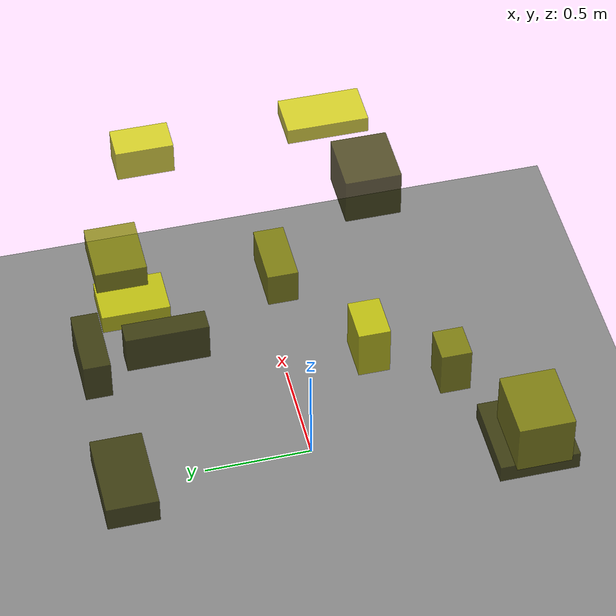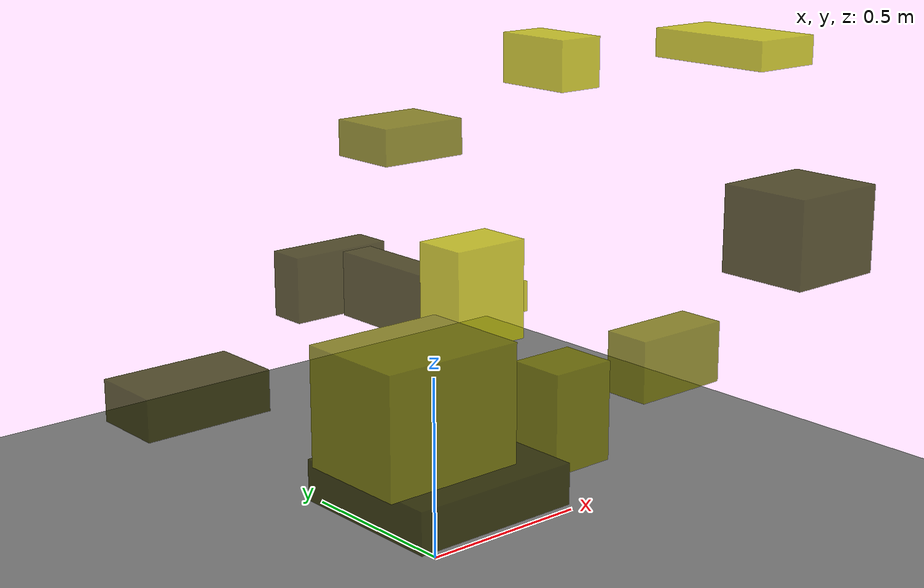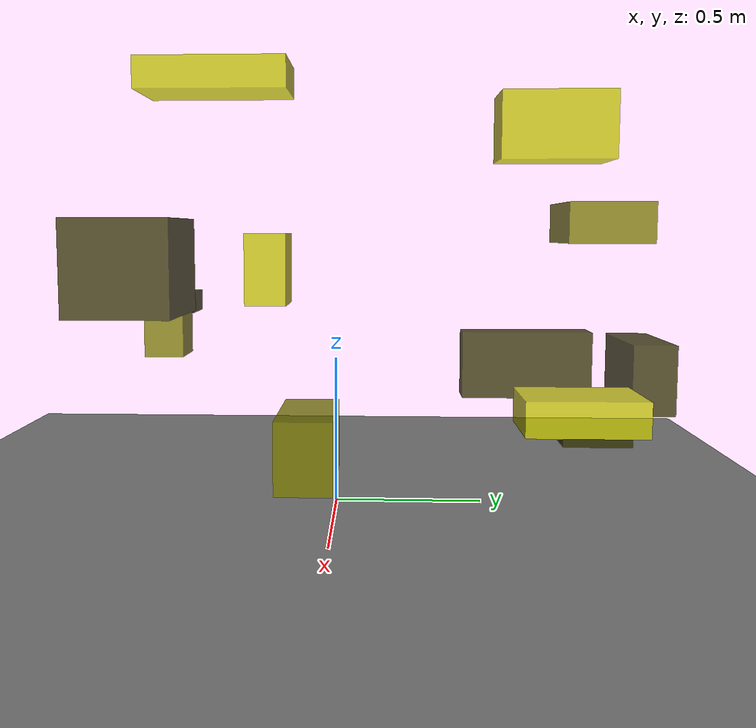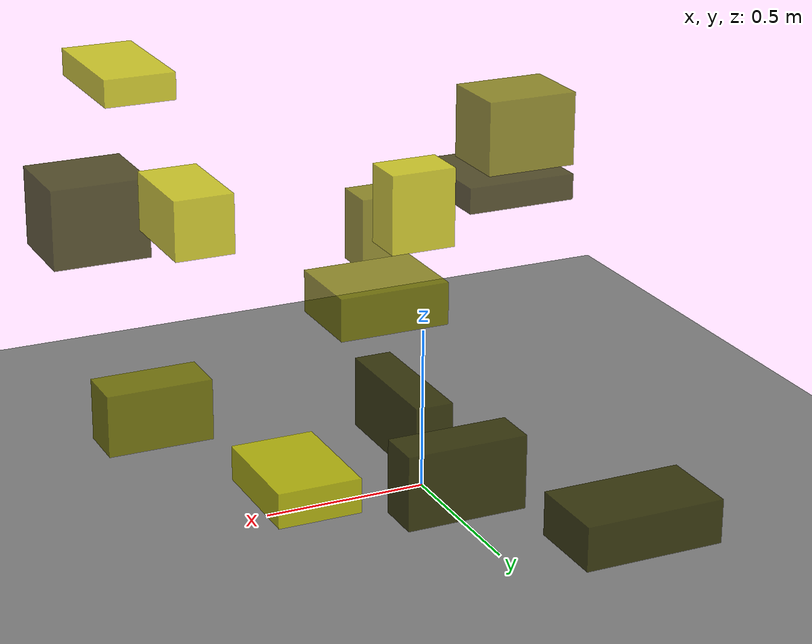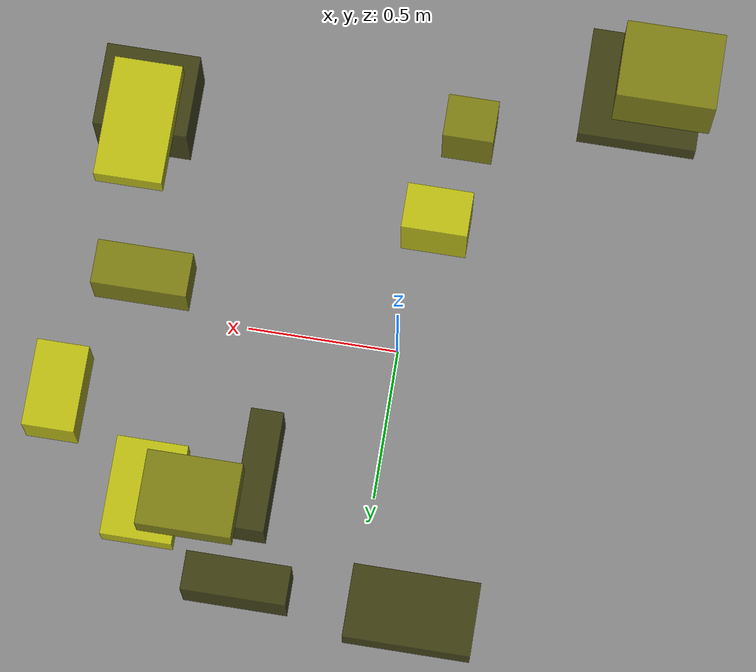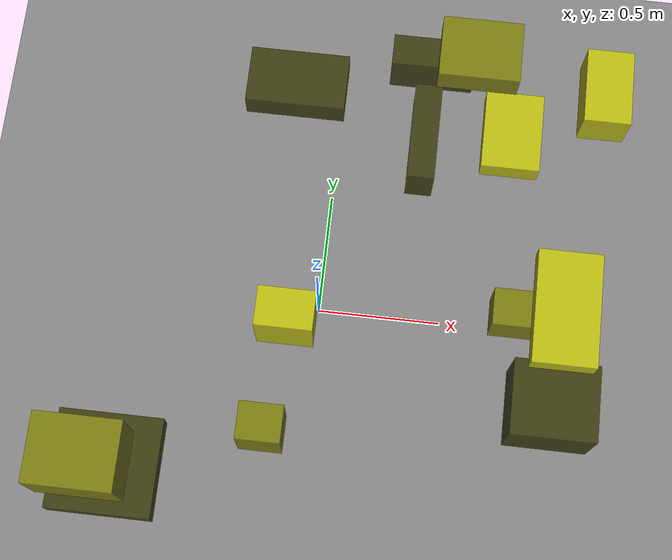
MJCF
<?xml version="1.0"?>
<mujoco model="obstacle_scene">
  <compiler angle="radian" coordinate="local"/>
  <option timestep="0.001" gravity="0 0 -9.81"/>

  <asset>
    <material name="obstacle_mat" rgba="0.8 0.8 0.0 0.8"/>
    <material name="ground_mat" rgba="0.5 0.5 0.5 1"/>
  </asset>

  <worldbody>
    <!-- Ground plane -->
    <geom name="ground" type="plane" size="3 3 0.1" material="ground_mat"/>

    <!-- Obstacles -->
    <body name="obstacle_0" pos="-0.187148 0.897235 0.260922">
      <geom name="obs_0" type="box" size="0.204462 0.118759 0.064092" rgba="0.2 0.2 0.0 0.8"/>
    </body>
    <body name="obstacle_1" pos="-0.134364 -0.611359 0.609477">
      <geom name="obs_1" type="box" size="0.080621 0.068630 0.117488" rgba="0.5 0.5 0.0 0.8"/>
    </body>
    <body name="obstacle_2" pos="0.930115 0.556638 1.172561">
      <geom name="obs_2" type="box" size="0.077713 0.130342 0.077612" rgba="0.8 0.8 0.0 0.8"/>
    </body>
    <body name="obstacle_3" pos="0.358622 0.931333 0.509712">
      <geom name="obs_3" type="box" size="0.164562 0.061485 0.101449" rgba="0.2 0.2 0.0 0.8"/>
    </body>
    <body name="obstacle_4" pos="-0.726459 -0.813845 0.814364">
      <geom name="obs_4" type="box" size="0.155112 0.122834 0.123975" rgba="0.5 0.5 0.0 0.8"/>
    </body>
    <body name="obstacle_5" pos="0.821952 -0.253772 1.308012">
      <geom name="obs_5" type="box" size="0.101899 0.183408 0.038773" rgba="0.8 0.8 0.0 0.8"/>
    </body>
    <body name="obstacle_6" pos="0.860812 -0.467744 0.844655">
      <geom name="obs_6" type="box" size="0.146376 0.130824 0.119903" rgba="0.2 0.2 0.0 0.8"/>
    </body>
    <body name="obstacle_7" pos="0.510789 0.768014 0.955894">
      <geom name="obs_7" type="box" size="0.144933 0.114324 0.055462" rgba="0.5 0.5 0.0 0.8"/>
    </body>
    <body name="obstacle_8" pos="0.697060 0.683196 0.454769">
      <geom name="obs_8" type="box" size="0.113471 0.158945 0.047787" rgba="0.8 0.8 0.0 0.8"/>
    </body>
    <body name="obstacle_9" pos="-0.661068 -0.807781 0.637522">
      <geom name="obs_9" type="box" size="0.187774 0.177076 0.043588" rgba="0.2 0.2 0.0 0.8"/>
    </body>
    <body name="obstacle_10" pos="0.832831 -0.029458 0.390019">
      <geom name="obs_10" type="box" size="0.154727 0.072123 0.090856" rgba="0.5 0.5 0.0 0.8"/>
    </body>
    <body name="obstacle_11" pos="-0.081848 -0.242241 0.801989">
      <geom name="obs_11" type="box" size="0.102587 0.070984 0.123727" rgba="0.8 0.8 0.0 0.8"/>
    </body>
    <body name="obstacle_12" pos="0.348358 0.589756 0.534982">
      <geom name="obs_12" type="box" size="0.051582 0.191053 0.098446" rgba="0.2 0.2 0.0 0.8"/>
    </body>
  </worldbody>
</mujoco>
